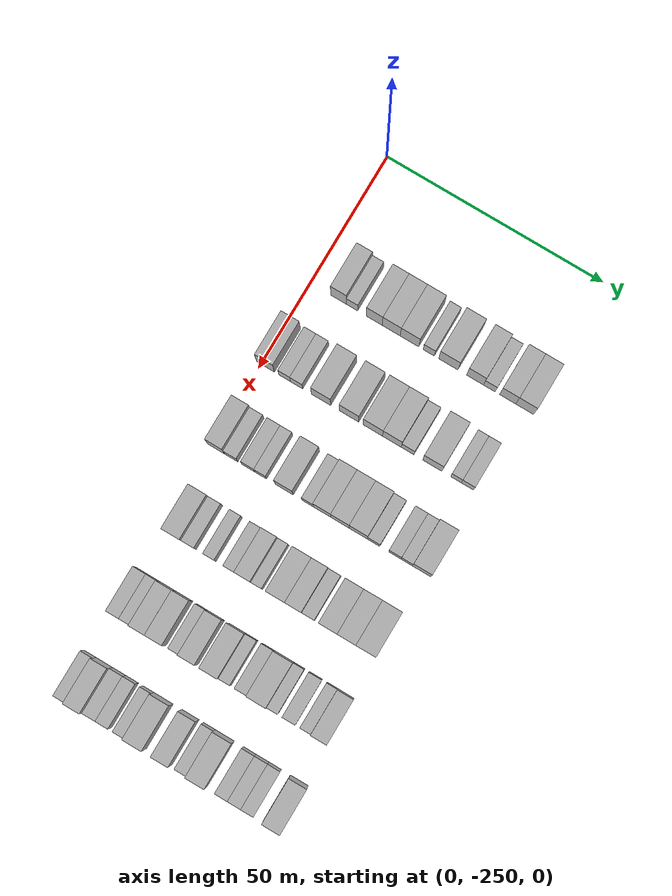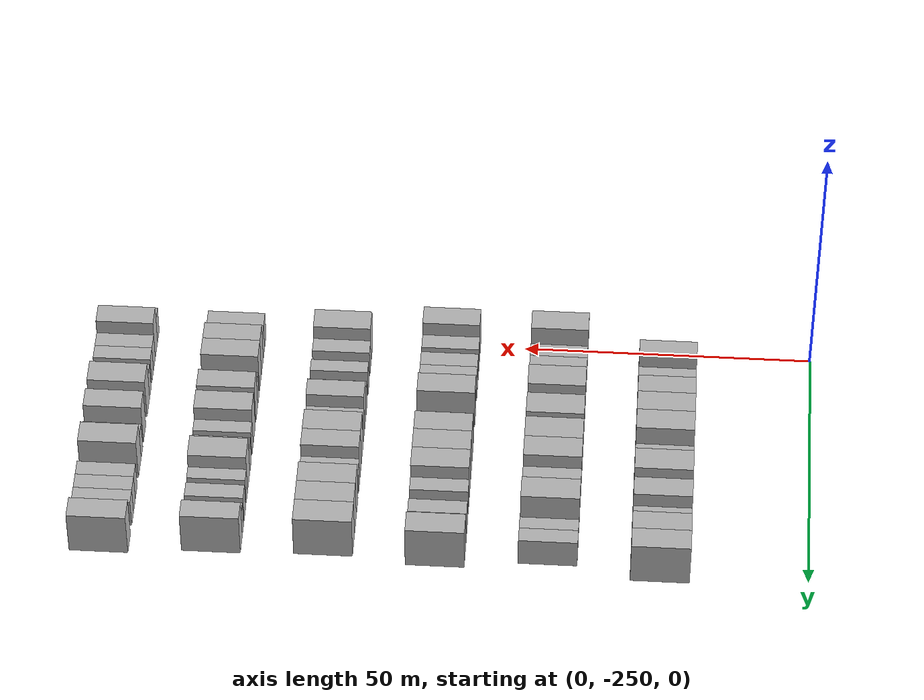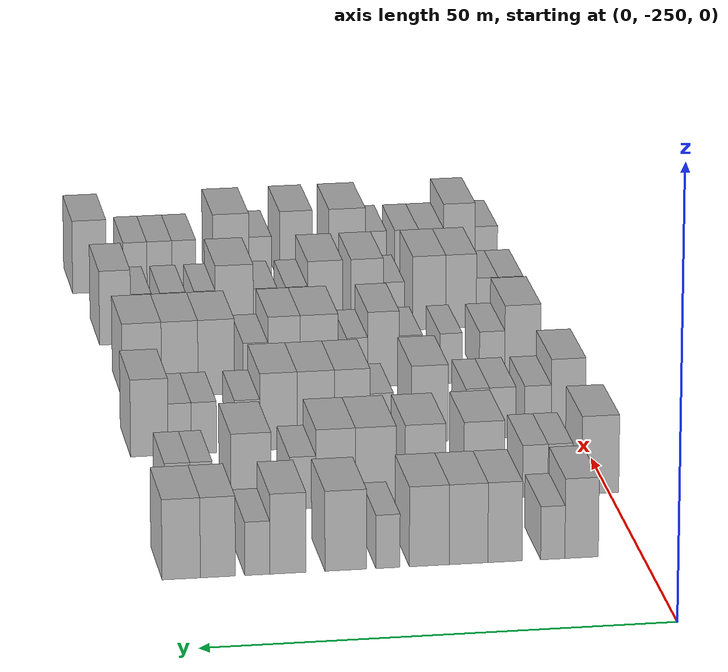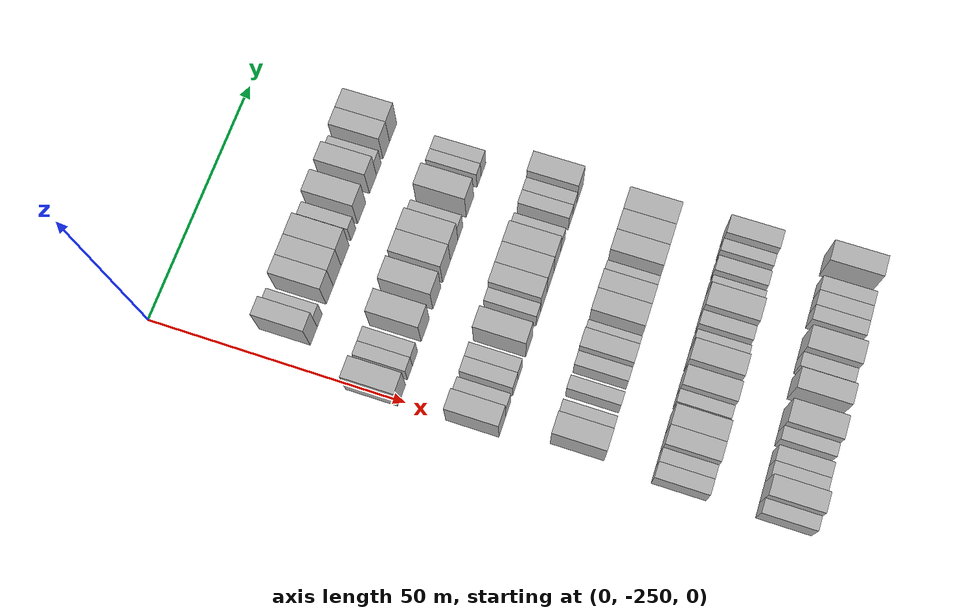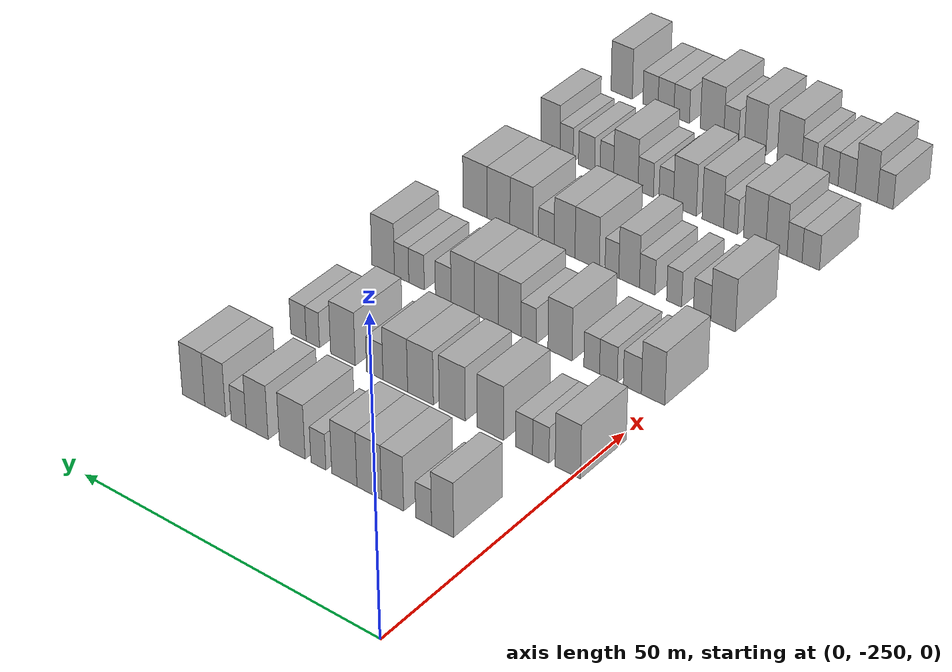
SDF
<sdf version="1.6">
 <world name="default">
  <model name="building_27">
   <static>1</static>
   <pose>25.0000 -243.4748 0 0.000000 0.000000 0.000000</pose>
   <link name="link">
    <pose>0 0 4.50 0 0 0</pose>
    <collision name="collision"><geometry><box><size>10.0000 3.6081 9.0000</size></box></geometry></collision>
    <visual name="visual">
     <cast_shadows>0</cast_shadows>
     <geometry><box><size>10.0000 3.6081 9.0000</size></box></geometry>
     <material>
      <script>
       <uri>model://HANNAS_wall/materials/scripts</uri>
       <uri>model://HANNAS_wall/materials/textures</uri>
       <name>vrc/HANNAS_wall</name>
      </script>
     </material>
    </visual>
   </link>
  </model>
  <model name="building_28">
   <static>1</static>
   <pose>25.0000 -240.3675 0 0.000000 0.000000 0.000000</pose>
   <link name="link">
    <pose>0 0 3.00 0 0 0</pose>
    <collision name="collision"><geometry><box><size>10.0000 2.6064 6.0000</size></box></geometry></collision>
    <visual name="visual">
     <cast_shadows>0</cast_shadows>
     <geometry><box><size>10.0000 2.6064 6.0000</size></box></geometry>
     <material>
      <script>
       <uri>model://HANNAS_wall/materials/scripts</uri>
       <uri>model://HANNAS_wall/materials/textures</uri>
       <name>vrc/HANNAS_wall</name>
      </script>
     </material>
    </visual>
   </link>
  </model>
  <model name="building_29">
   <static>1</static>
   <pose>25.0000 -235.2256 0 0.000000 0.000000 0.000000</pose>
   <link name="link">
    <pose>0 0 4.50 0 0 0</pose>
    <collision name="collision"><geometry><box><size>10.0000 3.6776 9.0000</size></box></geometry></collision>
    <visual name="visual">
     <cast_shadows>0</cast_shadows>
     <geometry><box><size>10.0000 3.6776 9.0000</size></box></geometry>
     <material>
      <script>
       <uri>model://HANNAS_wall/materials/scripts</uri>
       <uri>model://HANNAS_wall/materials/textures</uri>
       <name>vrc/HANNAS_wall</name>
      </script>
     </material>
    </visual>
   </link>
  </model>
  <model name="building_30">
   <static>1</static>
   <pose>25.0000 -231.3153 0 0.000000 0.000000 0.000000</pose>
   <link name="link">
    <pose>0 0 4.50 0 0 0</pose>
    <collision name="collision"><geometry><box><size>10.0000 4.1431 9.0000</size></box></geometry></collision>
    <visual name="visual">
     <cast_shadows>0</cast_shadows>
     <geometry><box><size>10.0000 4.1431 9.0000</size></box></geometry>
     <material>
      <script>
       <uri>model://HANNAS_wall/materials/scripts</uri>
       <uri>model://HANNAS_wall/materials/textures</uri>
       <name>vrc/HANNAS_wall</name>
      </script>
     </material>
    </visual>
   </link>
  </model>
  <model name="building_31">
   <static>1</static>
   <pose>25.0000 -227.1031 0 0.000000 0.000000 0.000000</pose>
   <link name="link">
    <pose>0 0 4.50 0 0 0</pose>
    <collision name="collision"><geometry><box><size>10.0000 4.2813 9.0000</size></box></geometry></collision>
    <visual name="visual">
     <cast_shadows>0</cast_shadows>
     <geometry><box><size>10.0000 4.2813 9.0000</size></box></geometry>
     <material>
      <script>
       <uri>model://HANNAS_wall/materials/scripts</uri>
       <uri>model://HANNAS_wall/materials/textures</uri>
       <name>vrc/HANNAS_wall</name>
      </script>
     </material>
    </visual>
   </link>
  </model>
  <model name="building_32">
   <static>1</static>
   <pose>25.0000 -222.6715 0 0.000000 0.000000 0.000000</pose>
   <link name="link">
    <pose>0 0 3.00 0 0 0</pose>
    <collision name="collision"><geometry><box><size>10.0000 2.5818 6.0000</size></box></geometry></collision>
    <visual name="visual">
     <cast_shadows>0</cast_shadows>
     <geometry><box><size>10.0000 2.5818 6.0000</size></box></geometry>
     <material>
      <script>
       <uri>model://HANNAS_wall/materials/scripts</uri>
       <uri>model://HANNAS_wall/materials/textures</uri>
       <name>vrc/HANNAS_wall</name>
      </script>
     </material>
    </visual>
   </link>
  </model>
  <model name="building_33">
   <static>1</static>
   <pose>25.0000 -218.1581 0 0.000000 0.000000 0.000000</pose>
   <link name="link">
    <pose>0 0 4.50 0 0 0</pose>
    <collision name="collision"><geometry><box><size>10.0000 4.4449 9.0000</size></box></geometry></collision>
    <visual name="visual">
     <cast_shadows>0</cast_shadows>
     <geometry><box><size>10.0000 4.4449 9.0000</size></box></geometry>
     <material>
      <script>
       <uri>model://HANNAS_wall/materials/scripts</uri>
       <uri>model://HANNAS_wall/materials/textures</uri>
       <name>vrc/HANNAS_wall</name>
      </script>
     </material>
    </visual>
   </link>
  </model>
  <model name="building_34">
   <static>1</static>
   <pose>25.0000 -211.9962 0 0.000000 0.000000 0.000000</pose>
   <link name="link">
    <pose>0 0 4.50 0 0 0</pose>
    <collision name="collision"><geometry><box><size>10.0000 3.8789 9.0000</size></box></geometry></collision>
    <visual name="visual">
     <cast_shadows>0</cast_shadows>
     <geometry><box><size>10.0000 3.8789 9.0000</size></box></geometry>
     <material>
      <script>
       <uri>model://HANNAS_wall/materials/scripts</uri>
       <uri>model://HANNAS_wall/materials/textures</uri>
       <name>vrc/HANNAS_wall</name>
      </script>
     </material>
    </visual>
   </link>
  </model>
  <model name="building_35">
   <static>1</static>
   <pose>25.0000 -208.7246 0 0.000000 0.000000 0.000000</pose>
   <link name="link">
    <pose>0 0 3.00 0 0 0</pose>
    <collision name="collision"><geometry><box><size>10.0000 2.6641 6.0000</size></box></geometry></collision>
    <visual name="visual">
     <cast_shadows>0</cast_shadows>
     <geometry><box><size>10.0000 2.6641 6.0000</size></box></geometry>
     <material>
      <script>
       <uri>model://HANNAS_wall/materials/scripts</uri>
       <uri>model://HANNAS_wall/materials/textures</uri>
       <name>vrc/HANNAS_wall</name>
      </script>
     </material>
    </visual>
   </link>
  </model>
  <model name="building_36">
   <static>1</static>
   <pose>25.0000 -204.5331 0 0.000000 0.000000 0.000000</pose>
   <link name="link">
    <pose>0 0 4.50 0 0 0</pose>
    <collision name="collision"><geometry><box><size>10.0000 3.7189 9.0000</size></box></geometry></collision>
    <visual name="visual">
     <cast_shadows>0</cast_shadows>
     <geometry><box><size>10.0000 3.7189 9.0000</size></box></geometry>
     <material>
      <script>
       <uri>model://HANNAS_wall/materials/scripts</uri>
       <uri>model://HANNAS_wall/materials/textures</uri>
       <name>vrc/HANNAS_wall</name>
      </script>
     </material>
    </visual>
   </link>
  </model>
  <model name="building_37">
   <static>1</static>
   <pose>25.0000 -200.6412 0 0.000000 0.000000 0.000000</pose>
   <link name="link">
    <pose>0 0 4.50 0 0 0</pose>
    <collision name="collision"><geometry><box><size>10.0000 4.0650 9.0000</size></box></geometry></collision>
    <visual name="visual">
     <cast_shadows>0</cast_shadows>
     <geometry><box><size>10.0000 4.0650 9.0000</size></box></geometry>
     <material>
      <script>
       <uri>model://HANNAS_wall/materials/scripts</uri>
       <uri>model://HANNAS_wall/materials/textures</uri>
       <name>vrc/HANNAS_wall</name>
      </script>
     </material>
    </visual>
   </link>
  </model>
  <model name="building_200">
   <static>1</static>
   <pose>44.0000 -248.9651 0 0.000000 0.000000 0.000000</pose>
   <link name="link">
    <pose>0 0 4.50 0 0 0</pose>
    <collision name="collision"><geometry><box><size>10.0000 4.1119 9.0000</size></box></geometry></collision>
    <visual name="visual">
     <cast_shadows>0</cast_shadows>
     <geometry><box><size>10.0000 4.1119 9.0000</size></box></geometry>
     <material>
      <script>
       <uri>model://HANNAS_wall/materials/scripts</uri>
       <uri>model://HANNAS_wall/materials/textures</uri>
       <name>vrc/HANNAS_wall</name>
      </script>
     </material>
    </visual>
   </link>
  </model>
  <model name="building_201">
   <static>1</static>
   <pose>44.0000 -244.5527 0 0.000000 0.000000 0.000000</pose>
   <link name="link">
    <pose>0 0 3.00 0 0 0</pose>
    <collision name="collision"><geometry><box><size>10.0000 2.7129 6.0000</size></box></geometry></collision>
    <visual name="visual">
     <cast_shadows>0</cast_shadows>
     <geometry><box><size>10.0000 2.7129 6.0000</size></box></geometry>
     <material>
      <script>
       <uri>model://HANNAS_wall/materials/scripts</uri>
       <uri>model://HANNAS_wall/materials/textures</uri>
       <name>vrc/HANNAS_wall</name>
      </script>
     </material>
    </visual>
   </link>
  </model>
  <model name="building_202">
   <static>1</static>
   <pose>44.0000 -241.7896 0 0.000000 0.000000 0.000000</pose>
   <link name="link">
    <pose>0 0 3.00 0 0 0</pose>
    <collision name="collision"><geometry><box><size>10.0000 2.8133 6.0000</size></box></geometry></collision>
    <visual name="visual">
     <cast_shadows>0</cast_shadows>
     <geometry><box><size>10.0000 2.8133 6.0000</size></box></geometry>
     <material>
      <script>
       <uri>model://HANNAS_wall/materials/scripts</uri>
       <uri>model://HANNAS_wall/materials/textures</uri>
       <name>vrc/HANNAS_wall</name>
      </script>
     </material>
    </visual>
   </link>
  </model>
  <model name="building_203">
   <static>1</static>
   <pose>44.0000 -236.1570 0 0.000000 0.000000 0.000000</pose>
   <link name="link">
    <pose>0 0 4.50 0 0 0</pose>
    <collision name="collision"><geometry><box><size>10.0000 4.4519 9.0000</size></box></geometry></collision>
    <visual name="visual">
     <cast_shadows>0</cast_shadows>
     <geometry><box><size>10.0000 4.4519 9.0000</size></box></geometry>
     <material>
      <script>
       <uri>model://HANNAS_wall/materials/scripts</uri>
       <uri>model://HANNAS_wall/materials/textures</uri>
       <name>vrc/HANNAS_wall</name>
      </script>
     </material>
    </visual>
   </link>
  </model>
  <model name="building_204">
   <static>1</static>
   <pose>44.0000 -229.7057 0 0.000000 0.000000 0.000000</pose>
   <link name="link">
    <pose>0 0 4.50 0 0 0</pose>
    <collision name="collision"><geometry><box><size>10.0000 4.4508 9.0000</size></box></geometry></collision>
    <visual name="visual">
     <cast_shadows>0</cast_shadows>
     <geometry><box><size>10.0000 4.4508 9.0000</size></box></geometry>
     <material>
      <script>
       <uri>model://HANNAS_wall/materials/scripts</uri>
       <uri>model://HANNAS_wall/materials/textures</uri>
       <name>vrc/HANNAS_wall</name>
      </script>
     </material>
    </visual>
   </link>
  </model>
  <model name="building_205">
   <static>1</static>
   <pose>44.0000 -224.2496 0 0.000000 0.000000 0.000000</pose>
   <link name="link">
    <pose>0 0 4.50 0 0 0</pose>
    <collision name="collision"><geometry><box><size>10.0000 4.4613 9.0000</size></box></geometry></collision>
    <visual name="visual">
     <cast_shadows>0</cast_shadows>
     <geometry><box><size>10.0000 4.4613 9.0000</size></box></geometry>
     <material>
      <script>
       <uri>model://HANNAS_wall/materials/scripts</uri>
       <uri>model://HANNAS_wall/materials/textures</uri>
       <name>vrc/HANNAS_wall</name>
      </script>
     </material>
    </visual>
   </link>
  </model>
  <model name="building_206">
   <static>1</static>
   <pose>44.0000 -219.8701 0 0.000000 0.000000 0.000000</pose>
   <link name="link">
    <pose>0 0 4.50 0 0 0</pose>
    <collision name="collision"><geometry><box><size>10.0000 4.2977 9.0000</size></box></geometry></collision>
    <visual name="visual">
     <cast_shadows>0</cast_shadows>
     <geometry><box><size>10.0000 4.2977 9.0000</size></box></geometry>
     <material>
      <script>
       <uri>model://HANNAS_wall/materials/scripts</uri>
       <uri>model://HANNAS_wall/materials/textures</uri>
       <name>vrc/HANNAS_wall</name>
      </script>
     </material>
    </visual>
   </link>
  </model>
  <model name="building_207">
   <static>1</static>
   <pose>44.0000 -216.2685 0 0.000000 0.000000 0.000000</pose>
   <link name="link">
    <pose>0 0 3.00 0 0 0</pose>
    <collision name="collision"><geometry><box><size>10.0000 2.9057 6.0000</size></box></geometry></collision>
    <visual name="visual">
     <cast_shadows>0</cast_shadows>
     <geometry><box><size>10.0000 2.9057 6.0000</size></box></geometry>
     <material>
      <script>
       <uri>model://HANNAS_wall/materials/scripts</uri>
       <uri>model://HANNAS_wall/materials/textures</uri>
       <name>vrc/HANNAS_wall</name>
      </script>
     </material>
    </visual>
   </link>
  </model>
  <model name="building_208">
   <static>1</static>
   <pose>44.0000 -210.6159 0 0.000000 0.000000 0.000000</pose>
   <link name="link">
    <pose>0 0 4.50 0 0 0</pose>
    <collision name="collision"><geometry><box><size>10.0000 4.3996 9.0000</size></box></geometry></collision>
    <visual name="visual">
     <cast_shadows>0</cast_shadows>
     <geometry><box><size>10.0000 4.3996 9.0000</size></box></geometry>
     <material>
      <script>
       <uri>model://HANNAS_wall/materials/scripts</uri>
       <uri>model://HANNAS_wall/materials/textures</uri>
       <name>vrc/HANNAS_wall</name>
      </script>
     </material>
    </visual>
   </link>
  </model>
  <model name="building_209">
   <static>1</static>
   <pose>44.0000 -205.2067 0 0.000000 0.000000 0.000000</pose>
   <link name="link">
    <pose>0 0 3.00 0 0 0</pose>
    <collision name="collision"><geometry><box><size>10.0000 2.4188 6.0000</size></box></geometry></collision>
    <visual name="visual">
     <cast_shadows>0</cast_shadows>
     <geometry><box><size>10.0000 2.4188 6.0000</size></box></geometry>
     <material>
      <script>
       <uri>model://HANNAS_wall/materials/scripts</uri>
       <uri>model://HANNAS_wall/materials/textures</uri>
       <name>vrc/HANNAS_wall</name>
      </script>
     </material>
    </visual>
   </link>
  </model>
  <model name="building_210">
   <static>1</static>
   <pose>44.0000 -202.5962 0 0.000000 0.000000 0.000000</pose>
   <link name="link">
    <pose>0 0 3.00 0 0 0</pose>
    <collision name="collision"><geometry><box><size>10.0000 2.8021 6.0000</size></box></geometry></collision>
    <visual name="visual">
     <cast_shadows>0</cast_shadows>
     <geometry><box><size>10.0000 2.8021 6.0000</size></box></geometry>
     <material>
      <script>
       <uri>model://HANNAS_wall/materials/scripts</uri>
       <uri>model://HANNAS_wall/materials/textures</uri>
       <name>vrc/HANNAS_wall</name>
      </script>
     </material>
    </visual>
   </link>
  </model>
  <model name="building_368">
   <static>1</static>
   <pose>63.0000 -248.8342 0 0.000000 0.000000 0.000000</pose>
   <link name="link">
    <pose>0 0 4.50 0 0 0</pose>
    <collision name="collision"><geometry><box><size>10.0000 3.8749 9.0000</size></box></geometry></collision>
    <visual name="visual">
     <cast_shadows>0</cast_shadows>
     <geometry><box><size>10.0000 3.8749 9.0000</size></box></geometry>
     <material>
      <script>
       <uri>model://HANNAS_wall/materials/scripts</uri>
       <uri>model://HANNAS_wall/materials/textures</uri>
       <name>vrc/HANNAS_wall</name>
      </script>
     </material>
    </visual>
   </link>
  </model>
  <model name="building_369">
   <static>1</static>
   <pose>63.0000 -245.3980 0 0.000000 0.000000 0.000000</pose>
   <link name="link">
    <pose>0 0 3.00 0 0 0</pose>
    <collision name="collision"><geometry><box><size>10.0000 2.9975 6.0000</size></box></geometry></collision>
    <visual name="visual">
     <cast_shadows>0</cast_shadows>
     <geometry><box><size>10.0000 2.9975 6.0000</size></box></geometry>
     <material>
      <script>
       <uri>model://HANNAS_wall/materials/scripts</uri>
       <uri>model://HANNAS_wall/materials/textures</uri>
       <name>vrc/HANNAS_wall</name>
      </script>
     </material>
    </visual>
   </link>
  </model>
  <model name="building_370">
   <static>1</static>
   <pose>63.0000 -241.4110 0 0.000000 0.000000 0.000000</pose>
   <link name="link">
    <pose>0 0 3.00 0 0 0</pose>
    <collision name="collision"><geometry><box><size>10.0000 2.9765 6.0000</size></box></geometry></collision>
    <visual name="visual">
     <cast_shadows>0</cast_shadows>
     <geometry><box><size>10.0000 2.9765 6.0000</size></box></geometry>
     <material>
      <script>
       <uri>model://HANNAS_wall/materials/scripts</uri>
       <uri>model://HANNAS_wall/materials/textures</uri>
       <name>vrc/HANNAS_wall</name>
      </script>
     </material>
    </visual>
   </link>
  </model>
  <model name="building_371">
   <static>1</static>
   <pose>63.0000 -238.5972 0 0.000000 0.000000 0.000000</pose>
   <link name="link">
    <pose>0 0 3.00 0 0 0</pose>
    <collision name="collision"><geometry><box><size>10.0000 2.6511 6.0000</size></box></geometry></collision>
    <visual name="visual">
     <cast_shadows>0</cast_shadows>
     <geometry><box><size>10.0000 2.6511 6.0000</size></box></geometry>
     <material>
      <script>
       <uri>model://HANNAS_wall/materials/scripts</uri>
       <uri>model://HANNAS_wall/materials/textures</uri>
       <name>vrc/HANNAS_wall</name>
      </script>
     </material>
    </visual>
   </link>
  </model>
  <model name="building_372">
   <static>1</static>
   <pose>63.0000 -233.2033 0 0.000000 0.000000 0.000000</pose>
   <link name="link">
    <pose>0 0 4.50 0 0 0</pose>
    <collision name="collision"><geometry><box><size>10.0000 4.1367 9.0000</size></box></geometry></collision>
    <visual name="visual">
     <cast_shadows>0</cast_shadows>
     <geometry><box><size>10.0000 4.1367 9.0000</size></box></geometry>
     <material>
      <script>
       <uri>model://HANNAS_wall/materials/scripts</uri>
       <uri>model://HANNAS_wall/materials/textures</uri>
       <name>vrc/HANNAS_wall</name>
      </script>
     </material>
    </visual>
   </link>
  </model>
  <model name="building_373">
   <static>1</static>
   <pose>63.0000 -227.8155 0 0.000000 0.000000 0.000000</pose>
   <link name="link">
    <pose>0 0 3.00 0 0 0</pose>
    <collision name="collision"><geometry><box><size>10.0000 2.6390 6.0000</size></box></geometry></collision>
    <visual name="visual">
     <cast_shadows>0</cast_shadows>
     <geometry><box><size>10.0000 2.6390 6.0000</size></box></geometry>
     <material>
      <script>
       <uri>model://HANNAS_wall/materials/scripts</uri>
       <uri>model://HANNAS_wall/materials/textures</uri>
       <name>vrc/HANNAS_wall</name>
      </script>
     </material>
    </visual>
   </link>
  </model>
  <model name="building_374">
   <static>1</static>
   <pose>63.0000 -224.5031 0 0.000000 0.000000 0.000000</pose>
   <link name="link">
    <pose>0 0 4.50 0 0 0</pose>
    <collision name="collision"><geometry><box><size>10.0000 3.9856 9.0000</size></box></geometry></collision>
    <visual name="visual">
     <cast_shadows>0</cast_shadows>
     <geometry><box><size>10.0000 3.9856 9.0000</size></box></geometry>
     <material>
      <script>
       <uri>model://HANNAS_wall/materials/scripts</uri>
       <uri>model://HANNAS_wall/materials/textures</uri>
       <name>vrc/HANNAS_wall</name>
      </script>
     </material>
    </visual>
   </link>
  </model>
  <model name="building_375">
   <static>1</static>
   <pose>63.0000 -220.4219 0 0.000000 0.000000 0.000000</pose>
   <link name="link">
    <pose>0 0 4.50 0 0 0</pose>
    <collision name="collision"><geometry><box><size>10.0000 4.1768 9.0000</size></box></geometry></collision>
    <visual name="visual">
     <cast_shadows>0</cast_shadows>
     <geometry><box><size>10.0000 4.1768 9.0000</size></box></geometry>
     <material>
      <script>
       <uri>model://HANNAS_wall/materials/scripts</uri>
       <uri>model://HANNAS_wall/materials/textures</uri>
       <name>vrc/HANNAS_wall</name>
      </script>
     </material>
    </visual>
   </link>
  </model>
  <model name="building_376">
   <static>1</static>
   <pose>63.0000 -216.2460 0 0.000000 0.000000 0.000000</pose>
   <link name="link">
    <pose>0 0 4.50 0 0 0</pose>
    <collision name="collision"><geometry><box><size>10.0000 4.1750 9.0000</size></box></geometry></collision>
    <visual name="visual">
     <cast_shadows>0</cast_shadows>
     <geometry><box><size>10.0000 4.1750 9.0000</size></box></geometry>
     <material>
      <script>
       <uri>model://HANNAS_wall/materials/scripts</uri>
       <uri>model://HANNAS_wall/materials/textures</uri>
       <name>vrc/HANNAS_wall</name>
      </script>
     </material>
    </visual>
   </link>
  </model>
  <model name="building_377">
   <static>1</static>
   <pose>63.0000 -212.7449 0 0.000000 0.000000 0.000000</pose>
   <link name="link">
    <pose>0 0 3.00 0 0 0</pose>
    <collision name="collision"><geometry><box><size>10.0000 2.8273 6.0000</size></box></geometry></collision>
    <visual name="visual">
     <cast_shadows>0</cast_shadows>
     <geometry><box><size>10.0000 2.8273 6.0000</size></box></geometry>
     <material>
      <script>
       <uri>model://HANNAS_wall/materials/scripts</uri>
       <uri>model://HANNAS_wall/materials/textures</uri>
       <name>vrc/HANNAS_wall</name>
      </script>
     </material>
    </visual>
   </link>
  </model>
  <model name="building_378">
   <static>1</static>
   <pose>63.0000 -207.9250 0 0.000000 0.000000 0.000000</pose>
   <link name="link">
    <pose>0 0 3.00 0 0 0</pose>
    <collision name="collision"><geometry><box><size>10.0000 2.8126 6.0000</size></box></geometry></collision>
    <visual name="visual">
     <cast_shadows>0</cast_shadows>
     <geometry><box><size>10.0000 2.8126 6.0000</size></box></geometry>
     <material>
      <script>
       <uri>model://HANNAS_wall/materials/scripts</uri>
       <uri>model://HANNAS_wall/materials/textures</uri>
       <name>vrc/HANNAS_wall</name>
      </script>
     </material>
    </visual>
   </link>
  </model>
  <model name="building_379">
   <static>1</static>
   <pose>63.0000 -205.2171 0 0.000000 0.000000 0.000000</pose>
   <link name="link">
    <pose>0 0 3.00 0 0 0</pose>
    <collision name="collision"><geometry><box><size>10.0000 2.6031 6.0000</size></box></geometry></collision>
    <visual name="visual">
     <cast_shadows>0</cast_shadows>
     <geometry><box><size>10.0000 2.6031 6.0000</size></box></geometry>
     <material>
      <script>
       <uri>model://HANNAS_wall/materials/scripts</uri>
       <uri>model://HANNAS_wall/materials/textures</uri>
       <name>vrc/HANNAS_wall</name>
      </script>
     </material>
    </visual>
   </link>
  </model>
  <model name="building_380">
   <static>1</static>
   <pose>63.0000 -201.8310 0 0.000000 0.000000 0.000000</pose>
   <link name="link">
    <pose>0 0 4.50 0 0 0</pose>
    <collision name="collision"><geometry><box><size>10.0000 4.1691 9.0000</size></box></geometry></collision>
    <visual name="visual">
     <cast_shadows>0</cast_shadows>
     <geometry><box><size>10.0000 4.1691 9.0000</size></box></geometry>
     <material>
      <script>
       <uri>model://HANNAS_wall/materials/scripts</uri>
       <uri>model://HANNAS_wall/materials/textures</uri>
       <name>vrc/HANNAS_wall</name>
      </script>
     </material>
    </visual>
   </link>
  </model>
  <model name="building_536">
   <static>1</static>
   <pose>82.0000 -246.9565 0 0.000000 0.000000 0.000000</pose>
   <link name="link">
    <pose>0 0 4.50 0 0 0</pose>
    <collision name="collision"><geometry><box><size>10.0000 4.1449 9.0000</size></box></geometry></collision>
    <visual name="visual">
     <cast_shadows>0</cast_shadows>
     <geometry><box><size>10.0000 4.1449 9.0000</size></box></geometry>
     <material>
      <script>
       <uri>model://HANNAS_wall/materials/scripts</uri>
       <uri>model://HANNAS_wall/materials/textures</uri>
       <name>vrc/HANNAS_wall</name>
      </script>
     </material>
    </visual>
   </link>
  </model>
  <model name="building_537">
   <static>1</static>
   <pose>82.0000 -243.4187 0 0.000000 0.000000 0.000000</pose>
   <link name="link">
    <pose>0 0 3.00 0 0 0</pose>
    <collision name="collision"><geometry><box><size>10.0000 2.9307 6.0000</size></box></geometry></collision>
    <visual name="visual">
     <cast_shadows>0</cast_shadows>
     <geometry><box><size>10.0000 2.9307 6.0000</size></box></geometry>
     <material>
      <script>
       <uri>model://HANNAS_wall/materials/scripts</uri>
       <uri>model://HANNAS_wall/materials/textures</uri>
       <name>vrc/HANNAS_wall</name>
      </script>
     </material>
    </visual>
   </link>
  </model>
  <model name="building_538">
   <static>1</static>
   <pose>82.0000 -238.6747 0 0.000000 0.000000 0.000000</pose>
   <link name="link">
    <pose>0 0 3.00 0 0 0</pose>
    <collision name="collision"><geometry><box><size>10.0000 2.5574 6.0000</size></box></geometry></collision>
    <visual name="visual">
     <cast_shadows>0</cast_shadows>
     <geometry><box><size>10.0000 2.5574 6.0000</size></box></geometry>
     <material>
      <script>
       <uri>model://HANNAS_wall/materials/scripts</uri>
       <uri>model://HANNAS_wall/materials/textures</uri>
       <name>vrc/HANNAS_wall</name>
      </script>
     </material>
    </visual>
   </link>
  </model>
  <model name="building_539">
   <static>1</static>
   <pose>82.0000 -234.0517 0 0.000000 0.000000 0.000000</pose>
   <link name="link">
    <pose>0 0 3.00 0 0 0</pose>
    <collision name="collision"><geometry><box><size>10.0000 2.6884 6.0000</size></box></geometry></collision>
    <visual name="visual">
     <cast_shadows>0</cast_shadows>
     <geometry><box><size>10.0000 2.6884 6.0000</size></box></geometry>
     <material>
      <script>
       <uri>model://HANNAS_wall/materials/scripts</uri>
       <uri>model://HANNAS_wall/materials/textures</uri>
       <name>vrc/HANNAS_wall</name>
      </script>
     </material>
    </visual>
   </link>
  </model>
  <model name="building_540">
   <static>1</static>
   <pose>82.0000 -230.9048 0 0.000000 0.000000 0.000000</pose>
   <link name="link">
    <pose>0 0 4.50 0 0 0</pose>
    <collision name="collision"><geometry><box><size>10.0000 3.6055 9.0000</size></box></geometry></collision>
    <visual name="visual">
     <cast_shadows>0</cast_shadows>
     <geometry><box><size>10.0000 3.6055 9.0000</size></box></geometry>
     <material>
      <script>
       <uri>model://HANNAS_wall/materials/scripts</uri>
       <uri>model://HANNAS_wall/materials/textures</uri>
       <name>vrc/HANNAS_wall</name>
      </script>
     </material>
    </visual>
   </link>
  </model>
  <model name="building_541">
   <static>1</static>
   <pose>82.0000 -227.8957 0 0.000000 0.000000 0.000000</pose>
   <link name="link">
    <pose>0 0 3.00 0 0 0</pose>
    <collision name="collision"><geometry><box><size>10.0000 2.4127 6.0000</size></box></geometry></collision>
    <visual name="visual">
     <cast_shadows>0</cast_shadows>
     <geometry><box><size>10.0000 2.4127 6.0000</size></box></geometry>
     <material>
      <script>
       <uri>model://HANNAS_wall/materials/scripts</uri>
       <uri>model://HANNAS_wall/materials/textures</uri>
       <name>vrc/HANNAS_wall</name>
      </script>
     </material>
    </visual>
   </link>
  </model>
  <model name="building_542">
   <static>1</static>
   <pose>82.0000 -223.5333 0 0.000000 0.000000 0.000000</pose>
   <link name="link">
    <pose>0 0 4.50 0 0 0</pose>
    <collision name="collision"><geometry><box><size>10.0000 4.3122 9.0000</size></box></geometry></collision>
    <visual name="visual">
     <cast_shadows>0</cast_shadows>
     <geometry><box><size>10.0000 4.3122 9.0000</size></box></geometry>
     <material>
      <script>
       <uri>model://HANNAS_wall/materials/scripts</uri>
       <uri>model://HANNAS_wall/materials/textures</uri>
       <name>vrc/HANNAS_wall</name>
      </script>
     </material>
    </visual>
   </link>
  </model>
  <model name="building_543">
   <static>1</static>
   <pose>82.0000 -219.5207 0 0.000000 0.000000 0.000000</pose>
   <link name="link">
    <pose>0 0 4.50 0 0 0</pose>
    <collision name="collision"><geometry><box><size>10.0000 3.7128 9.0000</size></box></geometry></collision>
    <visual name="visual">
     <cast_shadows>0</cast_shadows>
     <geometry><box><size>10.0000 3.7128 9.0000</size></box></geometry>
     <material>
      <script>
       <uri>model://HANNAS_wall/materials/scripts</uri>
       <uri>model://HANNAS_wall/materials/textures</uri>
       <name>vrc/HANNAS_wall</name>
      </script>
     </material>
    </visual>
   </link>
  </model>
  <model name="building_544">
   <static>1</static>
   <pose>82.0000 -216.2512 0 0.000000 0.000000 0.000000</pose>
   <link name="link">
    <pose>0 0 3.00 0 0 0</pose>
    <collision name="collision"><geometry><box><size>10.0000 2.8262 6.0000</size></box></geometry></collision>
    <visual name="visual">
     <cast_shadows>0</cast_shadows>
     <geometry><box><size>10.0000 2.8262 6.0000</size></box></geometry>
     <material>
      <script>
       <uri>model://HANNAS_wall/materials/scripts</uri>
       <uri>model://HANNAS_wall/materials/textures</uri>
       <name>vrc/HANNAS_wall</name>
      </script>
     </material>
    </visual>
   </link>
  </model>
  <model name="building_545">
   <static>1</static>
   <pose>82.0000 -211.7549 0 0.000000 0.000000 0.000000</pose>
   <link name="link">
    <pose>0 0 4.50 0 0 0</pose>
    <collision name="collision"><geometry><box><size>10.0000 4.1666 9.0000</size></box></geometry></collision>
    <visual name="visual">
     <cast_shadows>0</cast_shadows>
     <geometry><box><size>10.0000 4.1666 9.0000</size></box></geometry>
     <material>
      <script>
       <uri>model://HANNAS_wall/materials/scripts</uri>
       <uri>model://HANNAS_wall/materials/textures</uri>
       <name>vrc/HANNAS_wall</name>
      </script>
     </material>
    </visual>
   </link>
  </model>
  <model name="building_546">
   <static>1</static>
   <pose>82.0000 -207.5899 0 0.000000 0.000000 0.000000</pose>
   <link name="link">
    <pose>0 0 4.50 0 0 0</pose>
    <collision name="collision"><geometry><box><size>10.0000 4.1633 9.0000</size></box></geometry></collision>
    <visual name="visual">
     <cast_shadows>0</cast_shadows>
     <geometry><box><size>10.0000 4.1633 9.0000</size></box></geometry>
     <material>
      <script>
       <uri>model://HANNAS_wall/materials/scripts</uri>
       <uri>model://HANNAS_wall/materials/textures</uri>
       <name>vrc/HANNAS_wall</name>
      </script>
     </material>
    </visual>
   </link>
  </model>
  <model name="building_547">
   <static>1</static>
   <pose>82.0000 -203.2697 0 0.000000 0.000000 0.000000</pose>
   <link name="link">
    <pose>0 0 4.50 0 0 0</pose>
    <collision name="collision"><geometry><box><size>10.0000 4.4771 9.0000</size></box></geometry></collision>
    <visual name="visual">
     <cast_shadows>0</cast_shadows>
     <geometry><box><size>10.0000 4.4771 9.0000</size></box></geometry>
     <material>
      <script>
       <uri>model://HANNAS_wall/materials/scripts</uri>
       <uri>model://HANNAS_wall/materials/textures</uri>
       <name>vrc/HANNAS_wall</name>
      </script>
     </material>
    </visual>
   </link>
  </model>
  <model name="building_707">
   <static>1</static>
   <pose>101.0000 -248.7969 0 0.000000 0.000000 0.000000</pose>
   <link name="link">
    <pose>0 0 3.00 0 0 0</pose>
    <collision name="collision"><geometry><box><size>10.0000 2.9574 6.0000</size></box></geometry></collision>
    <visual name="visual">
     <cast_shadows>0</cast_shadows>
     <geometry><box><size>10.0000 2.9574 6.0000</size></box></geometry>
     <material>
      <script>
       <uri>model://HANNAS_wall/materials/scripts</uri>
       <uri>model://HANNAS_wall/materials/textures</uri>
       <name>vrc/HANNAS_wall</name>
      </script>
     </material>
    </visual>
   </link>
  </model>
  <model name="building_708">
   <static>1</static>
   <pose>101.0000 -246.0401 0 0.000000 0.000000 0.000000</pose>
   <link name="link">
    <pose>0 0 3.00 0 0 0</pose>
    <collision name="collision"><geometry><box><size>10.0000 2.5561 6.0000</size></box></geometry></collision>
    <visual name="visual">
     <cast_shadows>0</cast_shadows>
     <geometry><box><size>10.0000 2.5561 6.0000</size></box></geometry>
     <material>
      <script>
       <uri>model://HANNAS_wall/materials/scripts</uri>
       <uri>model://HANNAS_wall/materials/textures</uri>
       <name>vrc/HANNAS_wall</name>
      </script>
     </material>
    </visual>
   </link>
  </model>
  <model name="building_709">
   <static>1</static>
   <pose>101.0000 -242.9490 0 0.000000 0.000000 0.000000</pose>
   <link name="link">
    <pose>0 0 4.50 0 0 0</pose>
    <collision name="collision"><geometry><box><size>10.0000 3.6263 9.0000</size></box></geometry></collision>
    <visual name="visual">
     <cast_shadows>0</cast_shadows>
     <geometry><box><size>10.0000 3.6263 9.0000</size></box></geometry>
     <material>
      <script>
       <uri>model://HANNAS_wall/materials/scripts</uri>
       <uri>model://HANNAS_wall/materials/textures</uri>
       <name>vrc/HANNAS_wall</name>
      </script>
     </material>
    </visual>
   </link>
  </model>
  <model name="building_710">
   <static>1</static>
   <pose>101.0000 -239.1994 0 0.000000 0.000000 0.000000</pose>
   <link name="link">
    <pose>0 0 4.50 0 0 0</pose>
    <collision name="collision"><geometry><box><size>10.0000 3.8728 9.0000</size></box></geometry></collision>
    <visual name="visual">
     <cast_shadows>0</cast_shadows>
     <geometry><box><size>10.0000 3.8728 9.0000</size></box></geometry>
     <material>
      <script>
       <uri>model://HANNAS_wall/materials/scripts</uri>
       <uri>model://HANNAS_wall/materials/textures</uri>
       <name>vrc/HANNAS_wall</name>
      </script>
     </material>
    </visual>
   </link>
  </model>
  <model name="building_711">
   <static>1</static>
   <pose>101.0000 -235.0222 0 0.000000 0.000000 0.000000</pose>
   <link name="link">
    <pose>0 0 3.00 0 0 0</pose>
    <collision name="collision"><geometry><box><size>10.0000 2.4817 6.0000</size></box></geometry></collision>
    <visual name="visual">
     <cast_shadows>0</cast_shadows>
     <geometry><box><size>10.0000 2.4817 6.0000</size></box></geometry>
     <material>
      <script>
       <uri>model://HANNAS_wall/materials/scripts</uri>
       <uri>model://HANNAS_wall/materials/textures</uri>
       <name>vrc/HANNAS_wall</name>
      </script>
     </material>
    </visual>
   </link>
  </model>
  <model name="building_712">
   <static>1</static>
   <pose>101.0000 -231.8887 0 0.000000 0.000000 0.000000</pose>
   <link name="link">
    <pose>0 0 4.50 0 0 0</pose>
    <collision name="collision"><geometry><box><size>10.0000 3.7853 9.0000</size></box></geometry></collision>
    <visual name="visual">
     <cast_shadows>0</cast_shadows>
     <geometry><box><size>10.0000 3.7853 9.0000</size></box></geometry>
     <material>
      <script>
       <uri>model://HANNAS_wall/materials/scripts</uri>
       <uri>model://HANNAS_wall/materials/textures</uri>
       <name>vrc/HANNAS_wall</name>
      </script>
     </material>
    </visual>
   </link>
  </model>
  <model name="building_713">
   <static>1</static>
   <pose>101.0000 -226.9534 0 0.000000 0.000000 0.000000</pose>
   <link name="link">
    <pose>0 0 4.50 0 0 0</pose>
    <collision name="collision"><geometry><box><size>10.0000 4.0853 9.0000</size></box></geometry></collision>
    <visual name="visual">
     <cast_shadows>0</cast_shadows>
     <geometry><box><size>10.0000 4.0853 9.0000</size></box></geometry>
     <material>
      <script>
       <uri>model://HANNAS_wall/materials/scripts</uri>
       <uri>model://HANNAS_wall/materials/textures</uri>
       <name>vrc/HANNAS_wall</name>
      </script>
     </material>
    </visual>
   </link>
  </model>
  <model name="building_714">
   <static>1</static>
   <pose>101.0000 -223.6241 0 0.000000 0.000000 0.000000</pose>
   <link name="link">
    <pose>0 0 3.00 0 0 0</pose>
    <collision name="collision"><geometry><box><size>10.0000 2.5732 6.0000</size></box></geometry></collision>
    <visual name="visual">
     <cast_shadows>0</cast_shadows>
     <geometry><box><size>10.0000 2.5732 6.0000</size></box></geometry>
     <material>
      <script>
       <uri>model://HANNAS_wall/materials/scripts</uri>
       <uri>model://HANNAS_wall/materials/textures</uri>
       <name>vrc/HANNAS_wall</name>
      </script>
     </material>
    </visual>
   </link>
  </model>
  <model name="building_715">
   <static>1</static>
   <pose>101.0000 -219.9441 0 0.000000 0.000000 0.000000</pose>
   <link name="link">
    <pose>0 0 3.00 0 0 0</pose>
    <collision name="collision"><geometry><box><size>10.0000 2.7867 6.0000</size></box></geometry></collision>
    <visual name="visual">
     <cast_shadows>0</cast_shadows>
     <geometry><box><size>10.0000 2.7867 6.0000</size></box></geometry>
     <material>
      <script>
       <uri>model://HANNAS_wall/materials/scripts</uri>
       <uri>model://HANNAS_wall/materials/textures</uri>
       <name>vrc/HANNAS_wall</name>
      </script>
     </material>
    </visual>
   </link>
  </model>
  <model name="building_716">
   <static>1</static>
   <pose>101.0000 -216.3339 0 0.000000 0.000000 0.000000</pose>
   <link name="link">
    <pose>0 0 4.50 0 0 0</pose>
    <collision name="collision"><geometry><box><size>10.0000 4.4338 9.0000</size></box></geometry></collision>
    <visual name="visual">
     <cast_shadows>0</cast_shadows>
     <geometry><box><size>10.0000 4.4338 9.0000</size></box></geometry>
     <material>
      <script>
       <uri>model://HANNAS_wall/materials/scripts</uri>
       <uri>model://HANNAS_wall/materials/textures</uri>
       <name>vrc/HANNAS_wall</name>
      </script>
     </material>
    </visual>
   </link>
  </model>
  <model name="building_717">
   <static>1</static>
   <pose>101.0000 -212.8789 0 0.000000 0.000000 0.000000</pose>
   <link name="link">
    <pose>0 0 3.00 0 0 0</pose>
    <collision name="collision"><geometry><box><size>10.0000 2.4762 6.0000</size></box></geometry></collision>
    <visual name="visual">
     <cast_shadows>0</cast_shadows>
     <geometry><box><size>10.0000 2.4762 6.0000</size></box></geometry>
     <material>
      <script>
       <uri>model://HANNAS_wall/materials/scripts</uri>
       <uri>model://HANNAS_wall/materials/textures</uri>
       <name>vrc/HANNAS_wall</name>
      </script>
     </material>
    </visual>
   </link>
  </model>
  <model name="building_718">
   <static>1</static>
   <pose>101.0000 -209.1527 0 0.000000 0.000000 0.000000</pose>
   <link name="link">
    <pose>0 0 3.00 0 0 0</pose>
    <collision name="collision"><geometry><box><size>10.0000 2.9761 6.0000</size></box></geometry></collision>
    <visual name="visual">
     <cast_shadows>0</cast_shadows>
     <geometry><box><size>10.0000 2.9761 6.0000</size></box></geometry>
     <material>
      <script>
       <uri>model://HANNAS_wall/materials/scripts</uri>
       <uri>model://HANNAS_wall/materials/textures</uri>
       <name>vrc/HANNAS_wall</name>
      </script>
     </material>
    </visual>
   </link>
  </model>
  <model name="building_719">
   <static>1</static>
   <pose>101.0000 -205.4470 0 0.000000 0.000000 0.000000</pose>
   <link name="link">
    <pose>0 0 3.00 0 0 0</pose>
    <collision name="collision"><geometry><box><size>10.0000 2.4353 6.0000</size></box></geometry></collision>
    <visual name="visual">
     <cast_shadows>0</cast_shadows>
     <geometry><box><size>10.0000 2.4353 6.0000</size></box></geometry>
     <material>
      <script>
       <uri>model://HANNAS_wall/materials/scripts</uri>
       <uri>model://HANNAS_wall/materials/textures</uri>
       <name>vrc/HANNAS_wall</name>
      </script>
     </material>
    </visual>
   </link>
  </model>
  <model name="building_720">
   <static>1</static>
   <pose>101.0000 -202.4148 0 0.000000 0.000000 0.000000</pose>
   <link name="link">
    <pose>0 0 4.50 0 0 0</pose>
    <collision name="collision"><geometry><box><size>10.0000 3.6292 9.0000</size></box></geometry></collision>
    <visual name="visual">
     <cast_shadows>0</cast_shadows>
     <geometry><box><size>10.0000 3.6292 9.0000</size></box></geometry>
     <material>
      <script>
       <uri>model://HANNAS_wall/materials/scripts</uri>
       <uri>model://HANNAS_wall/materials/textures</uri>
       <name>vrc/HANNAS_wall</name>
      </script>
     </material>
    </visual>
   </link>
  </model>
  <model name="building_884">
   <static>1</static>
   <pose>120.0000 -249.1017 0 0.000000 0.000000 0.000000</pose>
   <link name="link">
    <pose>0 0 3.00 0 0 0</pose>
    <collision name="collision"><geometry><box><size>10.0000 2.7132 6.0000</size></box></geometry></collision>
    <visual name="visual">
     <cast_shadows>0</cast_shadows>
     <geometry><box><size>10.0000 2.7132 6.0000</size></box></geometry>
     <material>
      <script>
       <uri>model://HANNAS_wall/materials/scripts</uri>
       <uri>model://HANNAS_wall/materials/textures</uri>
       <name>vrc/HANNAS_wall</name>
      </script>
     </material>
    </visual>
   </link>
  </model>
  <model name="building_885">
   <static>1</static>
   <pose>120.0000 -245.8410 0 0.000000 0.000000 0.000000</pose>
   <link name="link">
    <pose>0 0 4.50 0 0 0</pose>
    <collision name="collision"><geometry><box><size>10.0000 3.8082 9.0000</size></box></geometry></collision>
    <visual name="visual">
     <cast_shadows>0</cast_shadows>
     <geometry><box><size>10.0000 3.8082 9.0000</size></box></geometry>
     <material>
      <script>
       <uri>model://HANNAS_wall/materials/scripts</uri>
       <uri>model://HANNAS_wall/materials/textures</uri>
       <name>vrc/HANNAS_wall</name>
      </script>
     </material>
    </visual>
   </link>
  </model>
  <model name="building_886">
   <static>1</static>
   <pose>120.0000 -242.4413 0 0.000000 0.000000 0.000000</pose>
   <link name="link">
    <pose>0 0 3.00 0 0 0</pose>
    <collision name="collision"><geometry><box><size>10.0000 2.9912 6.0000</size></box></geometry></collision>
    <visual name="visual">
     <cast_shadows>0</cast_shadows>
     <geometry><box><size>10.0000 2.9912 6.0000</size></box></geometry>
     <material>
      <script>
       <uri>model://HANNAS_wall/materials/scripts</uri>
       <uri>model://HANNAS_wall/materials/textures</uri>
       <name>vrc/HANNAS_wall</name>
      </script>
     </material>
    </visual>
   </link>
  </model>
  <model name="building_887">
   <static>1</static>
   <pose>120.0000 -239.5152 0 0.000000 0.000000 0.000000</pose>
   <link name="link">
    <pose>0 0 3.00 0 0 0</pose>
    <collision name="collision"><geometry><box><size>10.0000 2.8611 6.0000</size></box></geometry></collision>
    <visual name="visual">
     <cast_shadows>0</cast_shadows>
     <geometry><box><size>10.0000 2.8611 6.0000</size></box></geometry>
     <material>
      <script>
       <uri>model://HANNAS_wall/materials/scripts</uri>
       <uri>model://HANNAS_wall/materials/textures</uri>
       <name>vrc/HANNAS_wall</name>
      </script>
     </material>
    </visual>
   </link>
  </model>
  <model name="building_888">
   <static>1</static>
   <pose>120.0000 -235.8058 0 0.000000 0.000000 0.000000</pose>
   <link name="link">
    <pose>0 0 3.00 0 0 0</pose>
    <collision name="collision"><geometry><box><size>10.0000 2.5575 6.0000</size></box></geometry></collision>
    <visual name="visual">
     <cast_shadows>0</cast_shadows>
     <geometry><box><size>10.0000 2.5575 6.0000</size></box></geometry>
     <material>
      <script>
       <uri>model://HANNAS_wall/materials/scripts</uri>
       <uri>model://HANNAS_wall/materials/textures</uri>
       <name>vrc/HANNAS_wall</name>
      </script>
     </material>
    </visual>
   </link>
  </model>
  <model name="building_889">
   <static>1</static>
   <pose>120.0000 -232.3495 0 0.000000 0.000000 0.000000</pose>
   <link name="link">
    <pose>0 0 4.50 0 0 0</pose>
    <collision name="collision"><geometry><box><size>10.0000 4.3551 9.0000</size></box></geometry></collision>
    <visual name="visual">
     <cast_shadows>0</cast_shadows>
     <geometry><box><size>10.0000 4.3551 9.0000</size></box></geometry>
     <material>
      <script>
       <uri>model://HANNAS_wall/materials/scripts</uri>
       <uri>model://HANNAS_wall/materials/textures</uri>
       <name>vrc/HANNAS_wall</name>
      </script>
     </material>
    </visual>
   </link>
  </model>
  <model name="building_890">
   <static>1</static>
   <pose>120.0000 -226.2212 0 0.000000 0.000000 0.000000</pose>
   <link name="link">
    <pose>0 0 4.50 0 0 0</pose>
    <collision name="collision"><geometry><box><size>10.0000 3.9016 9.0000</size></box></geometry></collision>
    <visual name="visual">
     <cast_shadows>0</cast_shadows>
     <geometry><box><size>10.0000 3.9016 9.0000</size></box></geometry>
     <material>
      <script>
       <uri>model://HANNAS_wall/materials/scripts</uri>
       <uri>model://HANNAS_wall/materials/textures</uri>
       <name>vrc/HANNAS_wall</name>
      </script>
     </material>
    </visual>
   </link>
  </model>
  <model name="building_891">
   <static>1</static>
   <pose>120.0000 -221.9187 0 0.000000 0.000000 0.000000</pose>
   <link name="link">
    <pose>0 0 3.00 0 0 0</pose>
    <collision name="collision"><geometry><box><size>10.0000 2.7034 6.0000</size></box></geometry></collision>
    <visual name="visual">
     <cast_shadows>0</cast_shadows>
     <geometry><box><size>10.0000 2.7034 6.0000</size></box></geometry>
     <material>
      <script>
       <uri>model://HANNAS_wall/materials/scripts</uri>
       <uri>model://HANNAS_wall/materials/textures</uri>
       <name>vrc/HANNAS_wall</name>
      </script>
     </material>
    </visual>
   </link>
  </model>
  <model name="building_892">
   <static>1</static>
   <pose>120.0000 -218.4103 0 0.000000 0.000000 0.000000</pose>
   <link name="link">
    <pose>0 0 4.50 0 0 0</pose>
    <collision name="collision"><geometry><box><size>10.0000 4.3132 9.0000</size></box></geometry></collision>
    <visual name="visual">
     <cast_shadows>0</cast_shadows>
     <geometry><box><size>10.0000 4.3132 9.0000</size></box></geometry>
     <material>
      <script>
       <uri>model://HANNAS_wall/materials/scripts</uri>
       <uri>model://HANNAS_wall/materials/textures</uri>
       <name>vrc/HANNAS_wall</name>
      </script>
     </material>
    </visual>
   </link>
  </model>
  <model name="building_893">
   <static>1</static>
   <pose>120.0000 -212.8119 0 0.000000 0.000000 0.000000</pose>
   <link name="link">
    <pose>0 0 3.00 0 0 0</pose>
    <collision name="collision"><geometry><box><size>10.0000 2.8837 6.0000</size></box></geometry></collision>
    <visual name="visual">
     <cast_shadows>0</cast_shadows>
     <geometry><box><size>10.0000 2.8837 6.0000</size></box></geometry>
     <material>
      <script>
       <uri>model://HANNAS_wall/materials/scripts</uri>
       <uri>model://HANNAS_wall/materials/textures</uri>
       <name>vrc/HANNAS_wall</name>
      </script>
     </material>
    </visual>
   </link>
  </model>
  <model name="building_894">
   <static>1</static>
   <pose>120.0000 -209.8896 0 0.000000 0.000000 0.000000</pose>
   <link name="link">
    <pose>0 0 3.00 0 0 0</pose>
    <collision name="collision"><geometry><box><size>10.0000 2.9609 6.0000</size></box></geometry></collision>
    <visual name="visual">
     <cast_shadows>0</cast_shadows>
     <geometry><box><size>10.0000 2.9609 6.0000</size></box></geometry>
     <material>
      <script>
       <uri>model://HANNAS_wall/materials/scripts</uri>
       <uri>model://HANNAS_wall/materials/textures</uri>
       <name>vrc/HANNAS_wall</name>
      </script>
     </material>
    </visual>
   </link>
  </model>
  <model name="building_895">
   <static>1</static>
   <pose>120.0000 -206.9983 0 0.000000 0.000000 0.000000</pose>
   <link name="link">
    <pose>0 0 3.00 0 0 0</pose>
    <collision name="collision"><geometry><box><size>10.0000 2.8217 6.0000</size></box></geometry></collision>
    <visual name="visual">
     <cast_shadows>0</cast_shadows>
     <geometry><box><size>10.0000 2.8217 6.0000</size></box></geometry>
     <material>
      <script>
       <uri>model://HANNAS_wall/materials/scripts</uri>
       <uri>model://HANNAS_wall/materials/textures</uri>
       <name>vrc/HANNAS_wall</name>
      </script>
     </material>
    </visual>
   </link>
  </model>
  <model name="building_896">
   <static>1</static>
   <pose>120.0000 -201.5691 0 0.000000 0.000000 0.000000</pose>
   <link name="link">
    <pose>0 0 4.50 0 0 0</pose>
    <collision name="collision"><geometry><box><size>10.0000 4.0367 9.0000</size></box></geometry></collision>
    <visual name="visual">
     <cast_shadows>0</cast_shadows>
     <geometry><box><size>10.0000 4.0367 9.0000</size></box></geometry>
     <material>
      <script>
       <uri>model://HANNAS_wall/materials/scripts</uri>
       <uri>model://HANNAS_wall/materials/textures</uri>
       <name>vrc/HANNAS_wall</name>
      </script>
     </material>
    </visual>
   </link>
  </model>
 </world>
</sdf>
